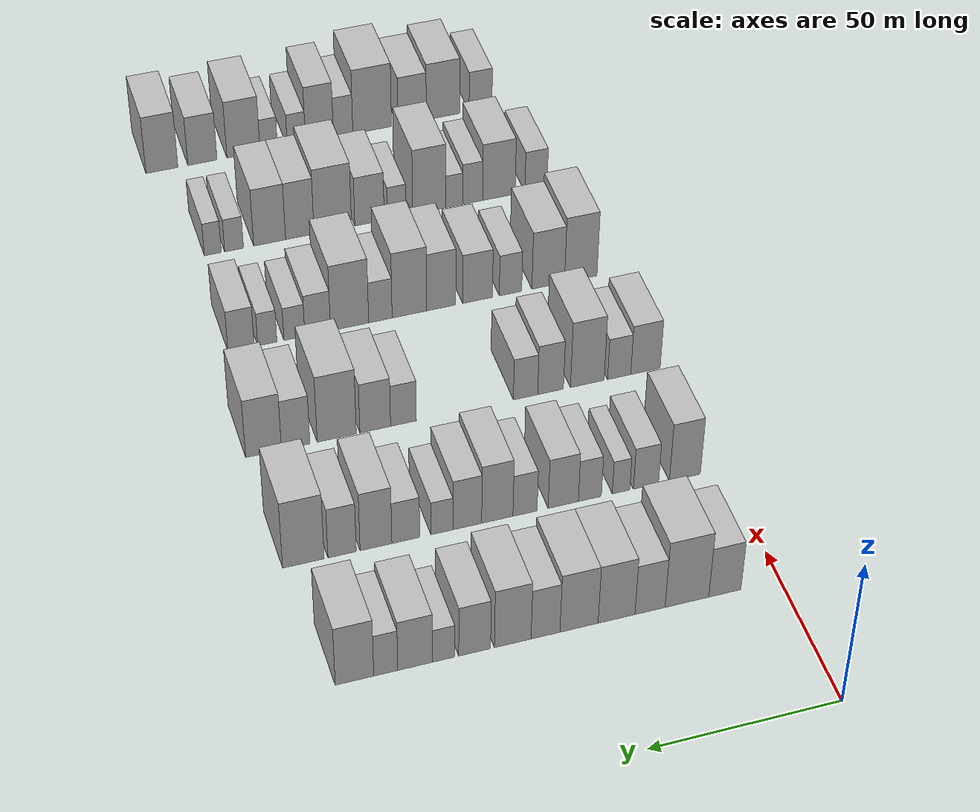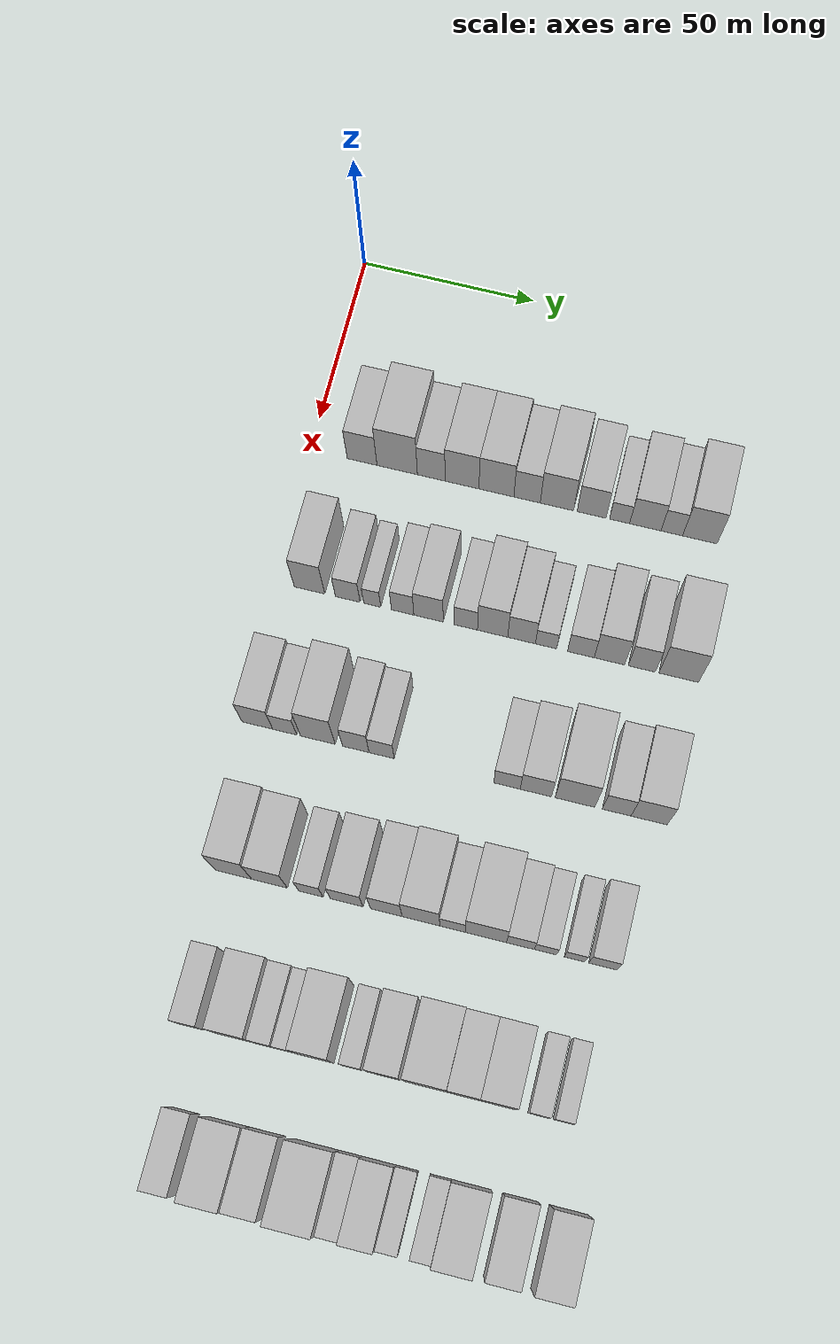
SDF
<sdf version="1.6">
 <world name="default">
  <model name="building_67">
   <static>1</static>
   <pose>50.0000 15.0285 0 0.000000 0.000000 0.000000</pose>
   <link name="link">
    <pose>0 0 9.00 0 0 0</pose>
    <collision name="collision"><geometry><box><size>20.0000 8.5962 18.0000</size></box></geometry></collision>
    <visual name="visual">
     <cast_shadows>0</cast_shadows>
     <geometry><box><size>20.0000 8.5962 18.0000</size></box></geometry>
     <material>
      <script>
       <uri>model://HANNAS_wall/materials/scripts</uri>
       <uri>model://HANNAS_wall/materials/textures</uri>
       <name>vrc/HANNAS_wall</name>
      </script>
     </material>
    </visual>
   </link>
  </model>
  <model name="building_68">
   <static>1</static>
   <pose>50.0000 25.1350 0 0.000000 0.000000 0.000000</pose>
   <link name="link">
    <pose>0 0 12.00 0 0 0</pose>
    <collision name="collision"><geometry><box><size>20.0000 11.6169 24.0000</size></box></geometry></collision>
    <visual name="visual">
     <cast_shadows>0</cast_shadows>
     <geometry><box><size>20.0000 11.6169 24.0000</size></box></geometry>
     <material>
      <script>
       <uri>model://HANNAS_wall/materials/scripts</uri>
       <uri>model://HANNAS_wall/materials/textures</uri>
       <name>vrc/HANNAS_wall</name>
      </script>
     </material>
    </visual>
   </link>
  </model>
  <model name="building_69">
   <static>1</static>
   <pose>50.0000 34.9227 0 0.000000 0.000000 0.000000</pose>
   <link name="link">
    <pose>0 0 9.00 0 0 0</pose>
    <collision name="collision"><geometry><box><size>20.0000 7.9586 18.0000</size></box></geometry></collision>
    <visual name="visual">
     <cast_shadows>0</cast_shadows>
     <geometry><box><size>20.0000 7.9586 18.0000</size></box></geometry>
     <material>
      <script>
       <uri>model://HANNAS_wall/materials/scripts</uri>
       <uri>model://HANNAS_wall/materials/textures</uri>
       <name>vrc/HANNAS_wall</name>
      </script>
     </material>
    </visual>
   </link>
  </model>
  <model name="building_70">
   <static>1</static>
   <pose>50.0000 43.7339 0 0.000000 0.000000 0.000000</pose>
   <link name="link">
    <pose>0 0 10.50 0 0 0</pose>
    <collision name="collision"><geometry><box><size>20.0000 9.6637 21.0000</size></box></geometry></collision>
    <visual name="visual">
     <cast_shadows>0</cast_shadows>
     <geometry><box><size>20.0000 9.6637 21.0000</size></box></geometry>
     <material>
      <script>
       <uri>model://HANNAS_wall/materials/scripts</uri>
       <uri>model://HANNAS_wall/materials/textures</uri>
       <name>vrc/HANNAS_wall</name>
      </script>
     </material>
    </visual>
   </link>
  </model>
  <model name="building_71">
   <static>1</static>
   <pose>50.0000 53.5504 0 0.000000 0.000000 0.000000</pose>
   <link name="link">
    <pose>0 0 10.50 0 0 0</pose>
    <collision name="collision"><geometry><box><size>20.0000 9.9694 21.0000</size></box></geometry></collision>
    <visual name="visual">
     <cast_shadows>0</cast_shadows>
     <geometry><box><size>20.0000 9.9694 21.0000</size></box></geometry>
     <material>
      <script>
       <uri>model://HANNAS_wall/materials/scripts</uri>
       <uri>model://HANNAS_wall/materials/textures</uri>
       <name>vrc/HANNAS_wall</name>
      </script>
     </material>
    </visual>
   </link>
  </model>
  <model name="building_72">
   <static>1</static>
   <pose>50.0000 62.2835 0 0.000000 0.000000 0.000000</pose>
   <link name="link">
    <pose>0 0 9.00 0 0 0</pose>
    <collision name="collision"><geometry><box><size>20.0000 7.4967 18.0000</size></box></geometry></collision>
    <visual name="visual">
     <cast_shadows>0</cast_shadows>
     <geometry><box><size>20.0000 7.4967 18.0000</size></box></geometry>
     <material>
      <script>
       <uri>model://HANNAS_wall/materials/scripts</uri>
       <uri>model://HANNAS_wall/materials/textures</uri>
       <name>vrc/HANNAS_wall</name>
      </script>
     </material>
    </visual>
   </link>
  </model>
  <model name="building_73">
   <static>1</static>
   <pose>50.0000 70.7687 0 0.000000 0.000000 0.000000</pose>
   <link name="link">
    <pose>0 0 10.50 0 0 0</pose>
    <collision name="collision"><geometry><box><size>20.0000 9.4737 21.0000</size></box></geometry></collision>
    <visual name="visual">
     <cast_shadows>0</cast_shadows>
     <geometry><box><size>20.0000 9.4737 21.0000</size></box></geometry>
     <material>
      <script>
       <uri>model://HANNAS_wall/materials/scripts</uri>
       <uri>model://HANNAS_wall/materials/textures</uri>
       <name>vrc/HANNAS_wall</name>
      </script>
     </material>
    </visual>
   </link>
  </model>
  <model name="building_74">
   <static>1</static>
   <pose>50.0000 80.5878 0 0.000000 0.000000 0.000000</pose>
   <link name="link">
    <pose>0 0 9.00 0 0 0</pose>
    <collision name="collision"><geometry><box><size>20.0000 8.1644 18.0000</size></box></geometry></collision>
    <visual name="visual">
     <cast_shadows>0</cast_shadows>
     <geometry><box><size>20.0000 8.1644 18.0000</size></box></geometry>
     <material>
      <script>
       <uri>model://HANNAS_wall/materials/scripts</uri>
       <uri>model://HANNAS_wall/materials/textures</uri>
       <name>vrc/HANNAS_wall</name>
      </script>
     </material>
    </visual>
   </link>
  </model>
  <model name="building_75">
   <static>1</static>
   <pose>50.0000 88.5057 0 0.000000 0.000000 0.000000</pose>
   <link name="link">
    <pose>0 0 6.00 0 0 0</pose>
    <collision name="collision"><geometry><box><size>20.0000 5.6715 12.0000</size></box></geometry></collision>
    <visual name="visual">
     <cast_shadows>0</cast_shadows>
     <geometry><box><size>20.0000 5.6715 12.0000</size></box></geometry>
     <material>
      <script>
       <uri>model://HANNAS_wall/materials/scripts</uri>
       <uri>model://HANNAS_wall/materials/textures</uri>
       <name>vrc/HANNAS_wall</name>
      </script>
     </material>
    </visual>
   </link>
  </model>
  <model name="building_76">
   <static>1</static>
   <pose>50.0000 95.7726 0 0.000000 0.000000 0.000000</pose>
   <link name="link">
    <pose>0 0 9.00 0 0 0</pose>
    <collision name="collision"><geometry><box><size>20.0000 8.8623 18.0000</size></box></geometry></collision>
    <visual name="visual">
     <cast_shadows>0</cast_shadows>
     <geometry><box><size>20.0000 8.8623 18.0000</size></box></geometry>
     <material>
      <script>
       <uri>model://HANNAS_wall/materials/scripts</uri>
       <uri>model://HANNAS_wall/materials/textures</uri>
       <name>vrc/HANNAS_wall</name>
      </script>
     </material>
    </visual>
   </link>
  </model>
  <model name="building_77">
   <static>1</static>
   <pose>50.0000 103.2378 0 0.000000 0.000000 0.000000</pose>
   <link name="link">
    <pose>0 0 7.50 0 0 0</pose>
    <collision name="collision"><geometry><box><size>20.0000 6.0681 15.0000</size></box></geometry></collision>
    <visual name="visual">
     <cast_shadows>0</cast_shadows>
     <geometry><box><size>20.0000 6.0681 15.0000</size></box></geometry>
     <material>
      <script>
       <uri>model://HANNAS_wall/materials/scripts</uri>
       <uri>model://HANNAS_wall/materials/textures</uri>
       <name>vrc/HANNAS_wall</name>
      </script>
     </material>
    </visual>
   </link>
  </model>
  <model name="building_78">
   <static>1</static>
   <pose>50.0000 111.1210 0 0.000000 0.000000 0.000000</pose>
   <link name="link">
    <pose>0 0 10.50 0 0 0</pose>
    <collision name="collision"><geometry><box><size>20.0000 9.6982 21.0000</size></box></geometry></collision>
    <visual name="visual">
     <cast_shadows>0</cast_shadows>
     <geometry><box><size>20.0000 9.6982 21.0000</size></box></geometry>
     <material>
      <script>
       <uri>model://HANNAS_wall/materials/scripts</uri>
       <uri>model://HANNAS_wall/materials/textures</uri>
       <name>vrc/HANNAS_wall</name>
      </script>
     </material>
    </visual>
   </link>
  </model>
  <model name="building_207">
   <static>1</static>
   <pose>90.0000 10.8233 0 0.000000 0.000000 0.000000</pose>
   <link name="link">
    <pose>0 0 10.50 0 0 0</pose>
    <collision name="collision"><geometry><box><size>20.0000 8.6094 21.0000</size></box></geometry></collision>
    <visual name="visual">
     <cast_shadows>0</cast_shadows>
     <geometry><box><size>20.0000 8.6094 21.0000</size></box></geometry>
     <material>
      <script>
       <uri>model://HANNAS_wall/materials/scripts</uri>
       <uri>model://HANNAS_wall/materials/textures</uri>
       <name>vrc/HANNAS_wall</name>
      </script>
     </material>
    </visual>
   </link>
  </model>
  <model name="building_208">
   <static>1</static>
   <pose>90.0000 21.5961 0 0.000000 0.000000 0.000000</pose>
   <link name="link">
    <pose>0 0 7.50 0 0 0</pose>
    <collision name="collision"><geometry><box><size>20.0000 6.9362 15.0000</size></box></geometry></collision>
    <visual name="visual">
     <cast_shadows>0</cast_shadows>
     <geometry><box><size>20.0000 6.9362 15.0000</size></box></geometry>
     <material>
      <script>
       <uri>model://HANNAS_wall/materials/scripts</uri>
       <uri>model://HANNAS_wall/materials/textures</uri>
       <name>vrc/HANNAS_wall</name>
      </script>
     </material>
    </visual>
   </link>
  </model>
  <model name="building_209">
   <static>1</static>
   <pose>90.0000 28.4658 0 0.000000 0.000000 0.000000</pose>
   <link name="link">
    <pose>0 0 6.00 0 0 0</pose>
    <collision name="collision"><geometry><box><size>20.0000 4.8032 12.0000</size></box></geometry></collision>
    <visual name="visual">
     <cast_shadows>0</cast_shadows>
     <geometry><box><size>20.0000 4.8032 12.0000</size></box></geometry>
     <material>
      <script>
       <uri>model://HANNAS_wall/materials/scripts</uri>
       <uri>model://HANNAS_wall/materials/textures</uri>
       <name>vrc/HANNAS_wall</name>
      </script>
     </material>
    </visual>
   </link>
  </model>
  <model name="building_210">
   <static>1</static>
   <pose>90.0000 37.0139 0 0.000000 0.000000 0.000000</pose>
   <link name="link">
    <pose>0 0 7.50 0 0 0</pose>
    <collision name="collision"><geometry><box><size>20.0000 6.2929 15.0000</size></box></geometry></collision>
    <visual name="visual">
     <cast_shadows>0</cast_shadows>
     <geometry><box><size>20.0000 6.2929 15.0000</size></box></geometry>
     <material>
      <script>
       <uri>model://HANNAS_wall/materials/scripts</uri>
       <uri>model://HANNAS_wall/materials/textures</uri>
       <name>vrc/HANNAS_wall</name>
      </script>
     </material>
    </visual>
   </link>
  </model>
  <model name="building_211">
   <static>1</static>
   <pose>90.0000 44.2765 0 0.000000 0.000000 0.000000</pose>
   <link name="link">
    <pose>0 0 9.00 0 0 0</pose>
    <collision name="collision"><geometry><box><size>20.0000 8.2323 18.0000</size></box></geometry></collision>
    <visual name="visual">
     <cast_shadows>0</cast_shadows>
     <geometry><box><size>20.0000 8.2323 18.0000</size></box></geometry>
     <material>
      <script>
       <uri>model://HANNAS_wall/materials/scripts</uri>
       <uri>model://HANNAS_wall/materials/textures</uri>
       <name>vrc/HANNAS_wall</name>
      </script>
     </material>
    </visual>
   </link>
  </model>
  <model name="building_212">
   <static>1</static>
   <pose>90.0000 54.6658 0 0.000000 0.000000 0.000000</pose>
   <link name="link">
    <pose>0 0 7.50 0 0 0</pose>
    <collision name="collision"><geometry><box><size>20.0000 6.5463 15.0000</size></box></geometry></collision>
    <visual name="visual">
     <cast_shadows>0</cast_shadows>
     <geometry><box><size>20.0000 6.5463 15.0000</size></box></geometry>
     <material>
      <script>
       <uri>model://HANNAS_wall/materials/scripts</uri>
       <uri>model://HANNAS_wall/materials/textures</uri>
       <name>vrc/HANNAS_wall</name>
      </script>
     </material>
    </visual>
   </link>
  </model>
  <model name="building_213">
   <static>1</static>
   <pose>90.0000 62.1550 0 0.000000 0.000000 0.000000</pose>
   <link name="link">
    <pose>0 0 10.50 0 0 0</pose>
    <collision name="collision"><geometry><box><size>20.0000 8.4321 21.0000</size></box></geometry></collision>
    <visual name="visual">
     <cast_shadows>0</cast_shadows>
     <geometry><box><size>20.0000 8.4321 21.0000</size></box></geometry>
     <material>
      <script>
       <uri>model://HANNAS_wall/materials/scripts</uri>
       <uri>model://HANNAS_wall/materials/textures</uri>
       <name>vrc/HANNAS_wall</name>
      </script>
     </material>
    </visual>
   </link>
  </model>
  <model name="building_214">
   <static>1</static>
   <pose>90.0000 70.2176 0 0.000000 0.000000 0.000000</pose>
   <link name="link">
    <pose>0 0 9.00 0 0 0</pose>
    <collision name="collision"><geometry><box><size>20.0000 7.6930 18.0000</size></box></geometry></collision>
    <visual name="visual">
     <cast_shadows>0</cast_shadows>
     <geometry><box><size>20.0000 7.6930 18.0000</size></box></geometry>
     <material>
      <script>
       <uri>model://HANNAS_wall/materials/scripts</uri>
       <uri>model://HANNAS_wall/materials/textures</uri>
       <name>vrc/HANNAS_wall</name>
      </script>
     </material>
    </visual>
   </link>
  </model>
  <model name="building_215">
   <static>1</static>
   <pose>90.0000 77.0058 0 0.000000 0.000000 0.000000</pose>
   <link name="link">
    <pose>0 0 6.00 0 0 0</pose>
    <collision name="collision"><geometry><box><size>20.0000 5.8833 12.0000</size></box></geometry></collision>
    <visual name="visual">
     <cast_shadows>0</cast_shadows>
     <geometry><box><size>20.0000 5.8833 12.0000</size></box></geometry>
     <material>
      <script>
       <uri>model://HANNAS_wall/materials/scripts</uri>
       <uri>model://HANNAS_wall/materials/textures</uri>
       <name>vrc/HANNAS_wall</name>
      </script>
     </material>
    </visual>
   </link>
  </model>
  <model name="building_216">
   <static>1</static>
   <pose>90.0000 86.6344 0 0.000000 0.000000 0.000000</pose>
   <link name="link">
    <pose>0 0 7.50 0 0 0</pose>
    <collision name="collision"><geometry><box><size>20.0000 7.3739 15.0000</size></box></geometry></collision>
    <visual name="visual">
     <cast_shadows>0</cast_shadows>
     <geometry><box><size>20.0000 7.3739 15.0000</size></box></geometry>
     <material>
      <script>
       <uri>model://HANNAS_wall/materials/scripts</uri>
       <uri>model://HANNAS_wall/materials/textures</uri>
       <name>vrc/HANNAS_wall</name>
      </script>
     </material>
    </visual>
   </link>
  </model>
  <model name="building_217">
   <static>1</static>
   <pose>90.0000 94.5221 0 0.000000 0.000000 0.000000</pose>
   <link name="link">
    <pose>0 0 10.50 0 0 0</pose>
    <collision name="collision"><geometry><box><size>20.0000 8.4016 21.0000</size></box></geometry></collision>
    <visual name="visual">
     <cast_shadows>0</cast_shadows>
     <geometry><box><size>20.0000 8.4016 21.0000</size></box></geometry>
     <material>
      <script>
       <uri>model://HANNAS_wall/materials/scripts</uri>
       <uri>model://HANNAS_wall/materials/textures</uri>
       <name>vrc/HANNAS_wall</name>
      </script>
     </material>
    </visual>
   </link>
  </model>
  <model name="building_218">
   <static>1</static>
   <pose>90.0000 103.4421 0 0.000000 0.000000 0.000000</pose>
   <link name="link">
    <pose>0 0 9.00 0 0 0</pose>
    <collision name="collision"><geometry><box><size>20.0000 7.4385 18.0000</size></box></geometry></collision>
    <visual name="visual">
     <cast_shadows>0</cast_shadows>
     <geometry><box><size>20.0000 7.4385 18.0000</size></box></geometry>
     <material>
      <script>
       <uri>model://HANNAS_wall/materials/scripts</uri>
       <uri>model://HANNAS_wall/materials/textures</uri>
       <name>vrc/HANNAS_wall</name>
      </script>
     </material>
    </visual>
   </link>
  </model>
  <model name="building_219">
   <static>1</static>
   <pose>90.0000 113.5942 0 0.000000 0.000000 0.000000</pose>
   <link name="link">
    <pose>0 0 12.00 0 0 0</pose>
    <collision name="collision"><geometry><box><size>20.0000 10.8657 24.0000</size></box></geometry></collision>
    <visual name="visual">
     <cast_shadows>0</cast_shadows>
     <geometry><box><size>20.0000 10.8657 24.0000</size></box></geometry>
     <material>
      <script>
       <uri>model://HANNAS_wall/materials/scripts</uri>
       <uri>model://HANNAS_wall/materials/textures</uri>
       <name>vrc/HANNAS_wall</name>
      </script>
     </material>
    </visual>
   </link>
  </model>
  <model name="building_345">
   <static>1</static>
   <pose>130.0000 7.3540 0 0.000000 0.000000 0.000000</pose>
   <link name="link">
    <pose>0 0 9.00 0 0 0</pose>
    <collision name="collision"><geometry><box><size>20.0000 8.4761 18.0000</size></box></geometry></collision>
    <visual name="visual">
     <cast_shadows>0</cast_shadows>
     <geometry><box><size>20.0000 8.4761 18.0000</size></box></geometry>
     <material>
      <script>
       <uri>model://HANNAS_wall/materials/scripts</uri>
       <uri>model://HANNAS_wall/materials/textures</uri>
       <name>vrc/HANNAS_wall</name>
      </script>
     </material>
    </visual>
   </link>
  </model>
  <model name="building_346">
   <static>1</static>
   <pose>130.0000 14.9193 0 0.000000 0.000000 0.000000</pose>
   <link name="link">
    <pose>0 0 7.50 0 0 0</pose>
    <collision name="collision"><geometry><box><size>20.0000 6.6546 15.0000</size></box></geometry></collision>
    <visual name="visual">
     <cast_shadows>0</cast_shadows>
     <geometry><box><size>20.0000 6.6546 15.0000</size></box></geometry>
     <material>
      <script>
       <uri>model://HANNAS_wall/materials/scripts</uri>
       <uri>model://HANNAS_wall/materials/textures</uri>
       <name>vrc/HANNAS_wall</name>
      </script>
     </material>
    </visual>
   </link>
  </model>
  <model name="building_347">
   <static>1</static>
   <pose>130.0000 24.0473 0 0.000000 0.000000 0.000000</pose>
   <link name="link">
    <pose>0 0 12.00 0 0 0</pose>
    <collision name="collision"><geometry><box><size>20.0000 9.6013 24.0000</size></box></geometry></collision>
    <visual name="visual">
     <cast_shadows>0</cast_shadows>
     <geometry><box><size>20.0000 9.6013 24.0000</size></box></geometry>
     <material>
      <script>
       <uri>model://HANNAS_wall/materials/scripts</uri>
       <uri>model://HANNAS_wall/materials/textures</uri>
       <name>vrc/HANNAS_wall</name>
      </script>
     </material>
    </visual>
   </link>
  </model>
  <model name="building_348">
   <static>1</static>
   <pose>130.0000 34.5037 0 0.000000 0.000000 0.000000</pose>
   <link name="link">
    <pose>0 0 9.00 0 0 0</pose>
    <collision name="collision"><geometry><box><size>20.0000 7.3116 18.0000</size></box></geometry></collision>
    <visual name="visual">
     <cast_shadows>0</cast_shadows>
     <geometry><box><size>20.0000 7.3116 18.0000</size></box></geometry>
     <material>
      <script>
       <uri>model://HANNAS_wall/materials/scripts</uri>
       <uri>model://HANNAS_wall/materials/textures</uri>
       <name>vrc/HANNAS_wall</name>
      </script>
     </material>
    </visual>
   </link>
  </model>
  <model name="building_349">
   <static>1</static>
   <pose>130.0000 41.5877 0 0.000000 0.000000 0.000000</pose>
   <link name="link">
    <pose>0 0 7.50 0 0 0</pose>
    <collision name="collision"><geometry><box><size>20.0000 6.8563 15.0000</size></box></geometry></collision>
    <visual name="visual">
     <cast_shadows>0</cast_shadows>
     <geometry><box><size>20.0000 6.8563 15.0000</size></box></geometry>
     <material>
      <script>
       <uri>model://HANNAS_wall/materials/scripts</uri>
       <uri>model://HANNAS_wall/materials/textures</uri>
       <name>vrc/HANNAS_wall</name>
      </script>
     </material>
    </visual>
   </link>
  </model>
  <model name="building_350">
   <static>1</static>
   <pose>130.0000 75.7486 0 0.000000 0.000000 0.000000</pose>
   <link name="link">
    <pose>0 0 7.50 0 0 0</pose>
    <collision name="collision"><geometry><box><size>20.0000 7.1551 15.0000</size></box></geometry></collision>
    <visual name="visual">
     <cast_shadows>0</cast_shadows>
     <geometry><box><size>20.0000 7.1551 15.0000</size></box></geometry>
     <material>
      <script>
       <uri>model://HANNAS_wall/materials/scripts</uri>
       <uri>model://HANNAS_wall/materials/textures</uri>
       <name>vrc/HANNAS_wall</name>
      </script>
     </material>
    </visual>
   </link>
  </model>
  <model name="building_351">
   <static>1</static>
   <pose>130.0000 83.5500 0 0.000000 0.000000 0.000000</pose>
   <link name="link">
    <pose>0 0 9.00 0 0 0</pose>
    <collision name="collision"><geometry><box><size>20.0000 8.4477 18.0000</size></box></geometry></collision>
    <visual name="visual">
     <cast_shadows>0</cast_shadows>
     <geometry><box><size>20.0000 8.4477 18.0000</size></box></geometry>
     <material>
      <script>
       <uri>model://HANNAS_wall/materials/scripts</uri>
       <uri>model://HANNAS_wall/materials/textures</uri>
       <name>vrc/HANNAS_wall</name>
      </script>
     </material>
    </visual>
   </link>
  </model>
  <model name="building_352">
   <static>1</static>
   <pose>130.0000 94.1330 0 0.000000 0.000000 0.000000</pose>
   <link name="link">
    <pose>0 0 12.00 0 0 0</pose>
    <collision name="collision"><geometry><box><size>20.0000 10.7183 24.0000</size></box></geometry></collision>
    <visual name="visual">
     <cast_shadows>0</cast_shadows>
     <geometry><box><size>20.0000 10.7183 24.0000</size></box></geometry>
     <material>
      <script>
       <uri>model://HANNAS_wall/materials/scripts</uri>
       <uri>model://HANNAS_wall/materials/textures</uri>
       <name>vrc/HANNAS_wall</name>
      </script>
     </material>
    </visual>
   </link>
  </model>
  <model name="building_353">
   <static>1</static>
   <pose>130.0000 105.3572 0 0.000000 0.000000 0.000000</pose>
   <link name="link">
    <pose>0 0 9.00 0 0 0</pose>
    <collision name="collision"><geometry><box><size>20.0000 7.7301 18.0000</size></box></geometry></collision>
    <visual name="visual">
     <cast_shadows>0</cast_shadows>
     <geometry><box><size>20.0000 7.7301 18.0000</size></box></geometry>
     <material>
      <script>
       <uri>model://HANNAS_wall/materials/scripts</uri>
       <uri>model://HANNAS_wall/materials/textures</uri>
       <name>vrc/HANNAS_wall</name>
      </script>
     </material>
    </visual>
   </link>
  </model>
  <model name="building_354">
   <static>1</static>
   <pose>130.0000 114.0781 0 0.000000 0.000000 0.000000</pose>
   <link name="link">
    <pose>0 0 10.50 0 0 0</pose>
    <collision name="collision"><geometry><box><size>20.0000 9.7119 21.0000</size></box></geometry></collision>
    <visual name="visual">
     <cast_shadows>0</cast_shadows>
     <geometry><box><size>20.0000 9.7119 21.0000</size></box></geometry>
     <material>
      <script>
       <uri>model://HANNAS_wall/materials/scripts</uri>
       <uri>model://HANNAS_wall/materials/textures</uri>
       <name>vrc/HANNAS_wall</name>
      </script>
     </material>
    </visual>
   </link>
  </model>
  <model name="building_481">
   <static>1</static>
   <pose>170.0000 12.3150 0 0.000000 0.000000 0.000000</pose>
   <link name="link">
    <pose>0 0 12.00 0 0 0</pose>
    <collision name="collision"><geometry><box><size>20.0000 9.6547 24.0000</size></box></geometry></collision>
    <visual name="visual">
     <cast_shadows>0</cast_shadows>
     <geometry><box><size>20.0000 9.6547 24.0000</size></box></geometry>
     <material>
      <script>
       <uri>model://HANNAS_wall/materials/scripts</uri>
       <uri>model://HANNAS_wall/materials/textures</uri>
       <name>vrc/HANNAS_wall</name>
      </script>
     </material>
    </visual>
   </link>
  </model>
  <model name="building_482">
   <static>1</static>
   <pose>170.0000 21.9604 0 0.000000 0.000000 0.000000</pose>
   <link name="link">
    <pose>0 0 10.50 0 0 0</pose>
    <collision name="collision"><geometry><box><size>20.0000 9.6361 21.0000</size></box></geometry></collision>
    <visual name="visual">
     <cast_shadows>0</cast_shadows>
     <geometry><box><size>20.0000 9.6361 21.0000</size></box></geometry>
     <material>
      <script>
       <uri>model://HANNAS_wall/materials/scripts</uri>
       <uri>model://HANNAS_wall/materials/textures</uri>
       <name>vrc/HANNAS_wall</name>
      </script>
     </material>
    </visual>
   </link>
  </model>
  <model name="building_483">
   <static>1</static>
   <pose>170.0000 33.0729 0 0.000000 0.000000 0.000000</pose>
   <link name="link">
    <pose>0 0 7.50 0 0 0</pose>
    <collision name="collision"><geometry><box><size>20.0000 6.5888 15.0000</size></box></geometry></collision>
    <visual name="visual">
     <cast_shadows>0</cast_shadows>
     <geometry><box><size>20.0000 6.5888 15.0000</size></box></geometry>
     <material>
      <script>
       <uri>model://HANNAS_wall/materials/scripts</uri>
       <uri>model://HANNAS_wall/materials/textures</uri>
       <name>vrc/HANNAS_wall</name>
      </script>
     </material>
    </visual>
   </link>
  </model>
  <model name="building_484">
   <static>1</static>
   <pose>170.0000 42.7289 0 0.000000 0.000000 0.000000</pose>
   <link name="link">
    <pose>0 0 9.00 0 0 0</pose>
    <collision name="collision"><geometry><box><size>20.0000 8.7233 18.0000</size></box></geometry></collision>
    <visual name="visual">
     <cast_shadows>0</cast_shadows>
     <geometry><box><size>20.0000 8.7233 18.0000</size></box></geometry>
     <material>
      <script>
       <uri>model://HANNAS_wall/materials/scripts</uri>
       <uri>model://HANNAS_wall/materials/textures</uri>
       <name>vrc/HANNAS_wall</name>
      </script>
     </material>
    </visual>
   </link>
  </model>
  <model name="building_485">
   <static>1</static>
   <pose>170.0000 53.3124 0 0.000000 0.000000 0.000000</pose>
   <link name="link">
    <pose>0 0 10.50 0 0 0</pose>
    <collision name="collision"><geometry><box><size>20.0000 8.4435 21.0000</size></box></geometry></collision>
    <visual name="visual">
     <cast_shadows>0</cast_shadows>
     <geometry><box><size>20.0000 8.4435 21.0000</size></box></geometry>
     <material>
      <script>
       <uri>model://HANNAS_wall/materials/scripts</uri>
       <uri>model://HANNAS_wall/materials/textures</uri>
       <name>vrc/HANNAS_wall</name>
      </script>
     </material>
    </visual>
   </link>
  </model>
  <model name="building_486">
   <static>1</static>
   <pose>170.0000 62.5343 0 0.000000 0.000000 0.000000</pose>
   <link name="link">
    <pose>0 0 12.00 0 0 0</pose>
    <collision name="collision"><geometry><box><size>20.0000 10.0003 24.0000</size></box></geometry></collision>
    <visual name="visual">
     <cast_shadows>0</cast_shadows>
     <geometry><box><size>20.0000 10.0003 24.0000</size></box></geometry>
     <material>
      <script>
       <uri>model://HANNAS_wall/materials/scripts</uri>
       <uri>model://HANNAS_wall/materials/textures</uri>
       <name>vrc/HANNAS_wall</name>
      </script>
     </material>
    </visual>
   </link>
  </model>
  <model name="building_487">
   <static>1</static>
   <pose>170.0000 70.9064 0 0.000000 0.000000 0.000000</pose>
   <link name="link">
    <pose>0 0 7.50 0 0 0</pose>
    <collision name="collision"><geometry><box><size>20.0000 6.7438 15.0000</size></box></geometry></collision>
    <visual name="visual">
     <cast_shadows>0</cast_shadows>
     <geometry><box><size>20.0000 6.7438 15.0000</size></box></geometry>
     <material>
      <script>
       <uri>model://HANNAS_wall/materials/scripts</uri>
       <uri>model://HANNAS_wall/materials/textures</uri>
       <name>vrc/HANNAS_wall</name>
      </script>
     </material>
    </visual>
   </link>
  </model>
  <model name="building_488">
   <static>1</static>
   <pose>170.0000 79.7361 0 0.000000 0.000000 0.000000</pose>
   <link name="link">
    <pose>0 0 12.00 0 0 0</pose>
    <collision name="collision"><geometry><box><size>20.0000 10.9157 24.0000</size></box></geometry></collision>
    <visual name="visual">
     <cast_shadows>0</cast_shadows>
     <geometry><box><size>20.0000 10.9157 24.0000</size></box></geometry>
     <material>
      <script>
       <uri>model://HANNAS_wall/materials/scripts</uri>
       <uri>model://HANNAS_wall/materials/textures</uri>
       <name>vrc/HANNAS_wall</name>
      </script>
     </material>
    </visual>
   </link>
  </model>
  <model name="building_489">
   <static>1</static>
   <pose>170.0000 88.8549 0 0.000000 0.000000 0.000000</pose>
   <link name="link">
    <pose>0 0 7.50 0 0 0</pose>
    <collision name="collision"><geometry><box><size>20.0000 7.3218 15.0000</size></box></geometry></collision>
    <visual name="visual">
     <cast_shadows>0</cast_shadows>
     <geometry><box><size>20.0000 7.3218 15.0000</size></box></geometry>
     <material>
      <script>
       <uri>model://HANNAS_wall/materials/scripts</uri>
       <uri>model://HANNAS_wall/materials/textures</uri>
       <name>vrc/HANNAS_wall</name>
      </script>
     </material>
    </visual>
   </link>
  </model>
  <model name="building_490">
   <static>1</static>
   <pose>170.0000 95.4739 0 0.000000 0.000000 0.000000</pose>
   <link name="link">
    <pose>0 0 6.00 0 0 0</pose>
    <collision name="collision"><geometry><box><size>20.0000 5.9161 12.0000</size></box></geometry></collision>
    <visual name="visual">
     <cast_shadows>0</cast_shadows>
     <geometry><box><size>20.0000 5.9161 12.0000</size></box></geometry>
     <material>
      <script>
       <uri>model://HANNAS_wall/materials/scripts</uri>
       <uri>model://HANNAS_wall/materials/textures</uri>
       <name>vrc/HANNAS_wall</name>
      </script>
     </material>
    </visual>
   </link>
  </model>
  <model name="building_491">
   <static>1</static>
   <pose>170.0000 103.1375 0 0.000000 0.000000 0.000000</pose>
   <link name="link">
    <pose>0 0 6.00 0 0 0</pose>
    <collision name="collision"><geometry><box><size>20.0000 5.4112 12.0000</size></box></geometry></collision>
    <visual name="visual">
     <cast_shadows>0</cast_shadows>
     <geometry><box><size>20.0000 5.4112 12.0000</size></box></geometry>
     <material>
      <script>
       <uri>model://HANNAS_wall/materials/scripts</uri>
       <uri>model://HANNAS_wall/materials/textures</uri>
       <name>vrc/HANNAS_wall</name>
      </script>
     </material>
    </visual>
   </link>
  </model>
  <model name="building_492">
   <static>1</static>
   <pose>170.0000 110.5331 0 0.000000 0.000000 0.000000</pose>
   <link name="link">
    <pose>0 0 7.50 0 0 0</pose>
    <collision name="collision"><geometry><box><size>20.0000 7.3800 15.0000</size></box></geometry></collision>
    <visual name="visual">
     <cast_shadows>0</cast_shadows>
     <geometry><box><size>20.0000 7.3800 15.0000</size></box></geometry>
     <material>
      <script>
       <uri>model://HANNAS_wall/materials/scripts</uri>
       <uri>model://HANNAS_wall/materials/textures</uri>
       <name>vrc/HANNAS_wall</name>
      </script>
     </material>
    </visual>
   </link>
  </model>
  <model name="building_617">
   <static>1</static>
   <pose>210.0000 12.5049 0 0.000000 0.000000 0.000000</pose>
   <link name="link">
    <pose>0 0 7.50 0 0 0</pose>
    <collision name="collision"><geometry><box><size>20.0000 6.8005 15.0000</size></box></geometry></collision>
    <visual name="visual">
     <cast_shadows>0</cast_shadows>
     <geometry><box><size>20.0000 6.8005 15.0000</size></box></geometry>
     <material>
      <script>
       <uri>model://HANNAS_wall/materials/scripts</uri>
       <uri>model://HANNAS_wall/materials/textures</uri>
       <name>vrc/HANNAS_wall</name>
      </script>
     </material>
    </visual>
   </link>
  </model>
  <model name="building_618">
   <static>1</static>
   <pose>210.0000 23.8592 0 0.000000 0.000000 0.000000</pose>
   <link name="link">
    <pose>0 0 10.50 0 0 0</pose>
    <collision name="collision"><geometry><box><size>20.0000 9.9080 21.0000</size></box></geometry></collision>
    <visual name="visual">
     <cast_shadows>0</cast_shadows>
     <geometry><box><size>20.0000 9.9080 21.0000</size></box></geometry>
     <material>
      <script>
       <uri>model://HANNAS_wall/materials/scripts</uri>
       <uri>model://HANNAS_wall/materials/textures</uri>
       <name>vrc/HANNAS_wall</name>
      </script>
     </material>
    </visual>
   </link>
  </model>
  <model name="building_619">
   <static>1</static>
   <pose>210.0000 31.8236 0 0.000000 0.000000 0.000000</pose>
   <link name="link">
    <pose>0 0 7.50 0 0 0</pose>
    <collision name="collision"><geometry><box><size>20.0000 6.0206 15.0000</size></box></geometry></collision>
    <visual name="visual">
     <cast_shadows>0</cast_shadows>
     <geometry><box><size>20.0000 6.0206 15.0000</size></box></geometry>
     <material>
      <script>
       <uri>model://HANNAS_wall/materials/scripts</uri>
       <uri>model://HANNAS_wall/materials/textures</uri>
       <name>vrc/HANNAS_wall</name>
      </script>
     </material>
    </visual>
   </link>
  </model>
  <model name="building_620">
   <static>1</static>
   <pose>210.0000 37.3876 0 0.000000 0.000000 0.000000</pose>
   <link name="link">
    <pose>0 0 6.00 0 0 0</pose>
    <collision name="collision"><geometry><box><size>20.0000 5.1074 12.0000</size></box></geometry></collision>
    <visual name="visual">
     <cast_shadows>0</cast_shadows>
     <geometry><box><size>20.0000 5.1074 12.0000</size></box></geometry>
     <material>
      <script>
       <uri>model://HANNAS_wall/materials/scripts</uri>
       <uri>model://HANNAS_wall/materials/textures</uri>
       <name>vrc/HANNAS_wall</name>
      </script>
     </material>
    </visual>
   </link>
  </model>
  <model name="building_621">
   <static>1</static>
   <pose>210.0000 44.9694 0 0.000000 0.000000 0.000000</pose>
   <link name="link">
    <pose>0 0 12.00 0 0 0</pose>
    <collision name="collision"><geometry><box><size>20.0000 10.0563 24.0000</size></box></geometry></collision>
    <visual name="visual">
     <cast_shadows>0</cast_shadows>
     <geometry><box><size>20.0000 10.0563 24.0000</size></box></geometry>
     <material>
      <script>
       <uri>model://HANNAS_wall/materials/scripts</uri>
       <uri>model://HANNAS_wall/materials/textures</uri>
       <name>vrc/HANNAS_wall</name>
      </script>
     </material>
    </visual>
   </link>
  </model>
  <model name="building_622">
   <static>1</static>
   <pose>210.0000 54.7700 0 0.000000 0.000000 0.000000</pose>
   <link name="link">
    <pose>0 0 6.00 0 0 0</pose>
    <collision name="collision"><geometry><box><size>20.0000 5.5447 12.0000</size></box></geometry></collision>
    <visual name="visual">
     <cast_shadows>0</cast_shadows>
     <geometry><box><size>20.0000 5.5447 12.0000</size></box></geometry>
     <material>
      <script>
       <uri>model://HANNAS_wall/materials/scripts</uri>
       <uri>model://HANNAS_wall/materials/textures</uri>
       <name>vrc/HANNAS_wall</name>
      </script>
     </material>
    </visual>
   </link>
  </model>
  <model name="building_623">
   <static>1</static>
   <pose>210.0000 62.9230 0 0.000000 0.000000 0.000000</pose>
   <link name="link">
    <pose>0 0 9.00 0 0 0</pose>
    <collision name="collision"><geometry><box><size>20.0000 8.7615 18.0000</size></box></geometry></collision>
    <visual name="visual">
     <cast_shadows>0</cast_shadows>
     <geometry><box><size>20.0000 8.7615 18.0000</size></box></geometry>
     <material>
      <script>
       <uri>model://HANNAS_wall/materials/scripts</uri>
       <uri>model://HANNAS_wall/materials/textures</uri>
       <name>vrc/HANNAS_wall</name>
      </script>
     </material>
    </visual>
   </link>
  </model>
  <model name="building_624">
   <static>1</static>
   <pose>210.0000 73.8602 0 0.000000 0.000000 0.000000</pose>
   <link name="link">
    <pose>0 0 12.00 0 0 0</pose>
    <collision name="collision"><geometry><box><size>20.0000 11.1129 24.0000</size></box></geometry></collision>
    <visual name="visual">
     <cast_shadows>0</cast_shadows>
     <geometry><box><size>20.0000 11.1129 24.0000</size></box></geometry>
     <material>
      <script>
       <uri>model://HANNAS_wall/materials/scripts</uri>
       <uri>model://HANNAS_wall/materials/textures</uri>
       <name>vrc/HANNAS_wall</name>
      </script>
     </material>
    </visual>
   </link>
  </model>
  <model name="building_625">
   <static>1</static>
   <pose>210.0000 83.6204 0 0.000000 0.000000 0.000000</pose>
   <link name="link">
    <pose>0 0 10.50 0 0 0</pose>
    <collision name="collision"><geometry><box><size>20.0000 8.4074 21.0000</size></box></geometry></collision>
    <visual name="visual">
     <cast_shadows>0</cast_shadows>
     <geometry><box><size>20.0000 8.4074 21.0000</size></box></geometry>
     <material>
      <script>
       <uri>model://HANNAS_wall/materials/scripts</uri>
       <uri>model://HANNAS_wall/materials/textures</uri>
       <name>vrc/HANNAS_wall</name>
      </script>
     </material>
    </visual>
   </link>
  </model>
  <model name="building_626">
   <static>1</static>
   <pose>210.0000 92.5209 0 0.000000 0.000000 0.000000</pose>
   <link name="link">
    <pose>0 0 10.50 0 0 0</pose>
    <collision name="collision"><geometry><box><size>20.0000 9.3936 21.0000</size></box></geometry></collision>
    <visual name="visual">
     <cast_shadows>0</cast_shadows>
     <geometry><box><size>20.0000 9.3936 21.0000</size></box></geometry>
     <material>
      <script>
       <uri>model://HANNAS_wall/materials/scripts</uri>
       <uri>model://HANNAS_wall/materials/textures</uri>
       <name>vrc/HANNAS_wall</name>
      </script>
     </material>
    </visual>
   </link>
  </model>
  <model name="building_627">
   <static>1</static>
   <pose>210.0000 102.9630 0 0.000000 0.000000 0.000000</pose>
   <link name="link">
    <pose>0 0 6.00 0 0 0</pose>
    <collision name="collision"><geometry><box><size>20.0000 5.4907 12.0000</size></box></geometry></collision>
    <visual name="visual">
     <cast_shadows>0</cast_shadows>
     <geometry><box><size>20.0000 5.4907 12.0000</size></box></geometry>
     <material>
      <script>
       <uri>model://HANNAS_wall/materials/scripts</uri>
       <uri>model://HANNAS_wall/materials/textures</uri>
       <name>vrc/HANNAS_wall</name>
      </script>
     </material>
    </visual>
   </link>
  </model>
  <model name="building_628">
   <static>1</static>
   <pose>210.0000 109.1734 0 0.000000 0.000000 0.000000</pose>
   <link name="link">
    <pose>0 0 6.00 0 0 0</pose>
    <collision name="collision"><geometry><box><size>20.0000 4.9301 12.0000</size></box></geometry></collision>
    <visual name="visual">
     <cast_shadows>0</cast_shadows>
     <geometry><box><size>20.0000 4.9301 12.0000</size></box></geometry>
     <material>
      <script>
       <uri>model://HANNAS_wall/materials/scripts</uri>
       <uri>model://HANNAS_wall/materials/textures</uri>
       <name>vrc/HANNAS_wall</name>
      </script>
     </material>
    </visual>
   </link>
  </model>
  <model name="building_766">
   <static>1</static>
   <pose>250.0000 17.0553 0 0.000000 0.000000 0.000000</pose>
   <link name="link">
    <pose>0 0 7.50 0 0 0</pose>
    <collision name="collision"><geometry><box><size>20.0000 7.2217 15.0000</size></box></geometry></collision>
    <visual name="visual">
     <cast_shadows>0</cast_shadows>
     <geometry><box><size>20.0000 7.2217 15.0000</size></box></geometry>
     <material>
      <script>
       <uri>model://HANNAS_wall/materials/scripts</uri>
       <uri>model://HANNAS_wall/materials/textures</uri>
       <name>vrc/HANNAS_wall</name>
      </script>
     </material>
    </visual>
   </link>
  </model>
  <model name="building_767">
   <static>1</static>
   <pose>250.0000 28.8899 0 0.000000 0.000000 0.000000</pose>
   <link name="link">
    <pose>0 0 10.50 0 0 0</pose>
    <collision name="collision"><geometry><box><size>20.0000 10.4476 21.0000</size></box></geometry></collision>
    <visual name="visual">
     <cast_shadows>0</cast_shadows>
     <geometry><box><size>20.0000 10.4476 21.0000</size></box></geometry>
     <material>
      <script>
       <uri>model://HANNAS_wall/materials/scripts</uri>
       <uri>model://HANNAS_wall/materials/textures</uri>
       <name>vrc/HANNAS_wall</name>
      </script>
     </material>
    </visual>
   </link>
  </model>
  <model name="building_768">
   <static>1</static>
   <pose>250.0000 38.5556 0 0.000000 0.000000 0.000000</pose>
   <link name="link">
    <pose>0 0 9.00 0 0 0</pose>
    <collision name="collision"><geometry><box><size>20.0000 8.8836 18.0000</size></box></geometry></collision>
    <visual name="visual">
     <cast_shadows>0</cast_shadows>
     <geometry><box><size>20.0000 8.8836 18.0000</size></box></geometry>
     <material>
      <script>
       <uri>model://HANNAS_wall/materials/scripts</uri>
       <uri>model://HANNAS_wall/materials/textures</uri>
       <name>vrc/HANNAS_wall</name>
      </script>
     </material>
    </visual>
   </link>
  </model>
  <model name="building_769">
   <static>1</static>
   <pose>250.0000 50.9924 0 0.000000 0.000000 0.000000</pose>
   <link name="link">
    <pose>0 0 12.00 0 0 0</pose>
    <collision name="collision"><geometry><box><size>20.0000 11.9900 24.0000</size></box></geometry></collision>
    <visual name="visual">
     <cast_shadows>0</cast_shadows>
     <geometry><box><size>20.0000 11.9900 24.0000</size></box></geometry>
     <material>
      <script>
       <uri>model://HANNAS_wall/materials/scripts</uri>
       <uri>model://HANNAS_wall/materials/textures</uri>
       <name>vrc/HANNAS_wall</name>
      </script>
     </material>
    </visual>
   </link>
  </model>
  <model name="building_770">
   <static>1</static>
   <pose>250.0000 59.9896 0 0.000000 0.000000 0.000000</pose>
   <link name="link">
    <pose>0 0 7.50 0 0 0</pose>
    <collision name="collision"><geometry><box><size>20.0000 6.0044 15.0000</size></box></geometry></collision>
    <visual name="visual">
     <cast_shadows>0</cast_shadows>
     <geometry><box><size>20.0000 6.0044 15.0000</size></box></geometry>
     <material>
      <script>
       <uri>model://HANNAS_wall/materials/scripts</uri>
       <uri>model://HANNAS_wall/materials/textures</uri>
       <name>vrc/HANNAS_wall</name>
      </script>
     </material>
    </visual>
   </link>
  </model>
  <model name="building_771">
   <static>1</static>
   <pose>250.0000 67.2974 0 0.000000 0.000000 0.000000</pose>
   <link name="link">
    <pose>0 0 10.50 0 0 0</pose>
    <collision name="collision"><geometry><box><size>20.0000 8.6112 21.0000</size></box></geometry></collision>
    <visual name="visual">
     <cast_shadows>0</cast_shadows>
     <geometry><box><size>20.0000 8.6112 21.0000</size></box></geometry>
     <material>
      <script>
       <uri>model://HANNAS_wall/materials/scripts</uri>
       <uri>model://HANNAS_wall/materials/textures</uri>
       <name>vrc/HANNAS_wall</name>
      </script>
     </material>
    </visual>
   </link>
  </model>
  <model name="building_772">
   <static>1</static>
   <pose>250.0000 74.3998 0 0.000000 0.000000 0.000000</pose>
   <link name="link">
    <pose>0 0 6.00 0 0 0</pose>
    <collision name="collision"><geometry><box><size>20.0000 5.5936 12.0000</size></box></geometry></collision>
    <visual name="visual">
     <cast_shadows>0</cast_shadows>
     <geometry><box><size>20.0000 5.5936 12.0000</size></box></geometry>
     <material>
      <script>
       <uri>model://HANNAS_wall/materials/scripts</uri>
       <uri>model://HANNAS_wall/materials/textures</uri>
       <name>vrc/HANNAS_wall</name>
      </script>
     </material>
    </visual>
   </link>
  </model>
  <model name="building_773">
   <static>1</static>
   <pose>250.0000 82.8511 0 0.000000 0.000000 0.000000</pose>
   <link name="link">
    <pose>0 0 6.00 0 0 0</pose>
    <collision name="collision"><geometry><box><size>20.0000 5.3090 12.0000</size></box></geometry></collision>
    <visual name="visual">
     <cast_shadows>0</cast_shadows>
     <geometry><box><size>20.0000 5.3090 12.0000</size></box></geometry>
     <material>
      <script>
       <uri>model://HANNAS_wall/materials/scripts</uri>
       <uri>model://HANNAS_wall/materials/textures</uri>
       <name>vrc/HANNAS_wall</name>
      </script>
     </material>
    </visual>
   </link>
  </model>
  <model name="building_774">
   <static>1</static>
   <pose>250.0000 90.5453 0 0.000000 0.000000 0.000000</pose>
   <link name="link">
    <pose>0 0 10.50 0 0 0</pose>
    <collision name="collision"><geometry><box><size>20.0000 10.0794 21.0000</size></box></geometry></collision>
    <visual name="visual">
     <cast_shadows>0</cast_shadows>
     <geometry><box><size>20.0000 10.0794 21.0000</size></box></geometry>
     <material>
      <script>
       <uri>model://HANNAS_wall/materials/scripts</uri>
       <uri>model://HANNAS_wall/materials/textures</uri>
       <name>vrc/HANNAS_wall</name>
      </script>
     </material>
    </visual>
   </link>
  </model>
  <model name="building_775">
   <static>1</static>
   <pose>250.0000 102.9915 0 0.000000 0.000000 0.000000</pose>
   <link name="link">
    <pose>0 0 9.00 0 0 0</pose>
    <collision name="collision"><geometry><box><size>20.0000 8.8131 18.0000</size></box></geometry></collision>
    <visual name="visual">
     <cast_shadows>0</cast_shadows>
     <geometry><box><size>20.0000 8.8131 18.0000</size></box></geometry>
     <material>
      <script>
       <uri>model://HANNAS_wall/materials/scripts</uri>
       <uri>model://HANNAS_wall/materials/textures</uri>
       <name>vrc/HANNAS_wall</name>
      </script>
     </material>
    </visual>
   </link>
  </model>
  <model name="building_776">
   <static>1</static>
   <pose>250.0000 115.1995 0 0.000000 0.000000 0.000000</pose>
   <link name="link">
    <pose>0 0 10.50 0 0 0</pose>
    <collision name="collision"><geometry><box><size>20.0000 9.6029 21.0000</size></box></geometry></collision>
    <visual name="visual">
     <cast_shadows>0</cast_shadows>
     <geometry><box><size>20.0000 9.6029 21.0000</size></box></geometry>
     <material>
      <script>
       <uri>model://HANNAS_wall/materials/scripts</uri>
       <uri>model://HANNAS_wall/materials/textures</uri>
       <name>vrc/HANNAS_wall</name>
      </script>
     </material>
    </visual>
   </link>
  </model>
 </world>
</sdf>
